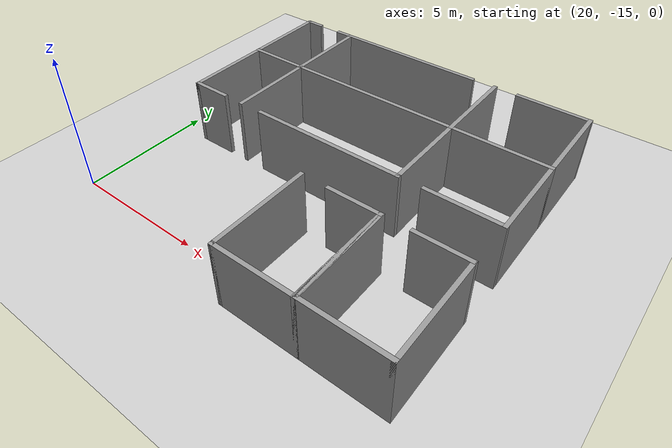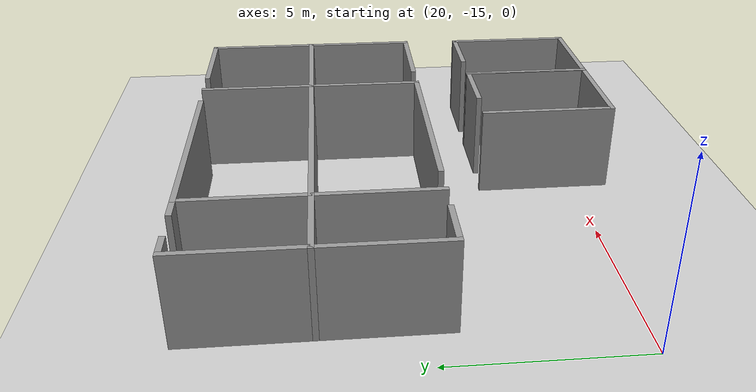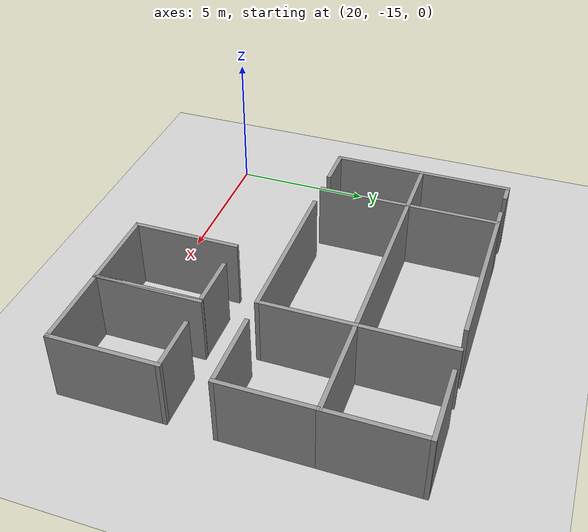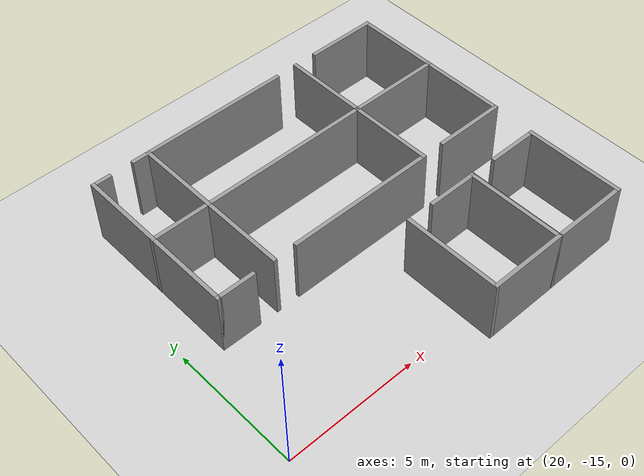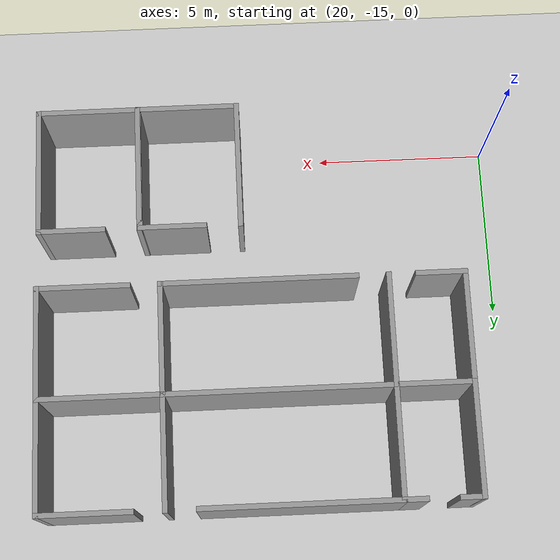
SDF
<sdf version="1.6">
 <world name="default">
  <model name="ground_plane">
   <static>1</static>
   <link name="link">
    <collision name="collision">
     <geometry><plane><normal>0 0 1</normal><size>100 100</size></plane></geometry>
     <surface><friction><ode><mu>100</mu><mu2>50</mu2></ode></friction></surface>
    </collision>
    <visual name="visual">
     <cast_shadows>0</cast_shadows>
     <geometry><plane><normal>0 0 1</normal><size>100 100</size></plane></geometry>
     <material>
      <script><uri>file://media/materials/scripts/gazebo.material</uri><name>Gazebo/Grey</name></script>
     </material>
    </visual>
   </link>
  </model>
  <model name="438">
   <pose>27.2934 -7.40751 0 0 -0 0</pose>
   <link name="Wall_105">
    <collision name="Wall_105_Collision">
     <geometry><box><size>6.668 0.15 2.5</size></box></geometry>
     <pose>0 0 1.25 0 -0 0</pose>
    </collision>
    <visual name="Wall_105_Visual">
     <pose>0 0 1.25 0 -0 0</pose>
     <geometry><box><size>6.668 0.15 2.5</size></box></geometry>
     <material>
      <script><uri>file://media/materials/scripts/gazebo.material</uri><name>Gazebo/Grey</name></script>
      <ambient>1 1 1 1</ambient>
     </material>
     <meta><layer>0</layer></meta>
    </visual>
    <pose>-0.6665 0 0 0 -0 0</pose>
   </link>
   <link name="Wall_106">
    <collision name="Wall_106_Collision">
     <geometry><box><size>3.338 0.15 2.5</size></box></geometry>
     <pose>0 0 1.25 0 -0 0</pose>
    </collision>
    <visual name="Wall_106_Visual">
     <pose>0 0 1.25 0 -0 0</pose>
     <geometry><box><size>3.338 0.15 2.5</size></box></geometry>
     <material>
      <script><uri>file://media/materials/scripts/gazebo.material</uri><name>Gazebo/Grey</name></script>
      <ambient>1 1 1 1</ambient>
     </material>
     <meta><layer>0</layer></meta>
    </visual>
    <pose>2.5925 -1.594 0 0 -0 -1.5708</pose>
   </link>
   <link name="Wall_108">
    <collision name="Wall_108_Collision">
     <geometry><box><size>3.338 0.15 2.5</size></box></geometry>
     <pose>0 0 1.25 0 -0 0</pose>
    </collision>
    <visual name="Wall_108_Visual">
     <pose>0 0 1.25 0 -0 0</pose>
     <geometry><box><size>3.338 0.15 2.5</size></box></geometry>
     <material>
      <script><uri>file://media/materials/scripts/gazebo.material</uri><name>Gazebo/Grey</name></script>
      <ambient>1 1 1 1</ambient>
     </material>
     <meta><layer>0</layer></meta>
    </visual>
    <pose>-3.9255 -1.594 0 0 -0 1.5708</pose>
   </link>
   <link name="Wall_110">
    <collision name="Wall_110_Collision">
     <geometry><box><size>3.667 0.15 2.5</size></box></geometry>
     <pose>0 0 1.25 0 -0 0</pose>
    </collision>
    <visual name="Wall_110_Visual">
     <pose>0 0 1.25 0 -0 0</pose>
     <geometry><box><size>3.667 0.15 2.5</size></box></geometry>
     <material>
      <script><uri>file://media/materials/scripts/gazebo.material</uri><name>Gazebo/Grey</name></script>
      <ambient>1 1 1 1</ambient>
     </material>
     <meta><layer>0</layer></meta>
    </visual>
    <pose>4.351 0 0 0 -0 0</pose>
   </link>
   <link name="Wall_111">
    <collision name="Wall_111_Collision">
     <geometry><box><size>3.338 0.15 2.5</size></box></geometry>
     <pose>0 0 1.25 0 -0 0</pose>
    </collision>
    <visual name="Wall_111_Visual">
     <pose>0 0 1.25 0 -0 0</pose>
     <geometry><box><size>3.338 0.15 2.5</size></box></geometry>
     <material>
      <script><uri>file://media/materials/scripts/gazebo.material</uri><name>Gazebo/Grey</name></script>
      <ambient>1 1 1 1</ambient>
     </material>
     <meta><layer>0</layer></meta>
    </visual>
    <pose>6.1095 1.594 0 0 -0 1.5708</pose>
   </link>
   <link name="Wall_113">
    <collision name="Wall_113_Collision">
     <geometry><box><size>3.338 0.15 2.5</size></box></geometry>
     <pose>0 0 1.25 0 -0 0</pose>
    </collision>
    <visual name="Wall_113_Visual">
     <pose>0 0 1.25 0 -0 0</pose>
     <geometry><box><size>3.338 0.15 2.5</size></box></geometry>
     <material>
      <script><uri>file://media/materials/scripts/gazebo.material</uri><name>Gazebo/Grey</name></script>
      <ambient>1 1 1 1</ambient>
     </material>
     <meta><layer>0</layer></meta>
    </visual>
    <pose>2.5925 1.594 0 0 -0 -1.5708</pose>
   </link>
   <link name="Wall_115">
    <collision name="Wall_115_Collision">
     <geometry><box><size>3.338 0.15 2.5</size></box></geometry>
     <pose>0 0 1.25 0 -0 0</pose>
    </collision>
    <visual name="Wall_115_Visual">
     <pose>0 0 1.25 0 -0 0</pose>
     <geometry><box><size>3.338 0.15 2.5</size></box></geometry>
     <material>
      <script><uri>file://media/materials/scripts/gazebo.material</uri><name>Gazebo/Grey</name></script>
      <ambient>1 1 1 1</ambient>
     </material>
     <meta><layer>0</layer></meta>
    </visual>
    <pose>6.1095 -1.594 0 0 -0 -1.5708</pose>
   </link>
   <link name="Wall_118">
    <collision name="Wall_118_Collision">
     <geometry><box><size>2.75 0.15 2.5</size></box></geometry>
     <pose>0 0 1.25 0 -0 0</pose>
    </collision>
    <visual name="Wall_118_Visual">
     <pose>0 0 1.25 0 -0 0</pose>
     <geometry><box><size>2.75 0.15 2.5</size></box></geometry>
     <material>
      <script><uri>file://media/materials/scripts/gazebo.material</uri><name>Gazebo/Grey</name></script>
      <ambient>1 1 1 1</ambient>
     </material>
     <meta><layer>0</layer></meta>
    </visual>
    <pose>4.8095 3.188 0 0 -0 3.14159</pose>
   </link>
   <link name="Wall_120">
    <collision name="Wall_120_Collision">
     <geometry><box><size>2.75 0.15 2.5</size></box></geometry>
     <pose>0 0 1.25 0 -0 0</pose>
    </collision>
    <visual name="Wall_120_Visual">
     <pose>0 0 1.25 0 -0 0</pose>
     <geometry><box><size>2.75 0.15 2.5</size></box></geometry>
     <material>
      <script><uri>file://media/materials/scripts/gazebo.material</uri><name>Gazebo/Grey</name></script>
      <ambient>1 1 1 1</ambient>
     </material>
     <meta><layer>0</layer></meta>
    </visual>
    <pose>4.8095 -3.188 0 0 -0 3.14159</pose>
   </link>
   <link name="Wall_122">
    <collision name="Wall_122_Collision">
     <geometry><box><size>5.75 0.15 2.5</size></box></geometry>
     <pose>0 0 1.25 0 -0 0</pose>
    </collision>
    <visual name="Wall_122_Visual">
     <pose>0 0 1.25 0 -0 0</pose>
     <geometry><box><size>5.75 0.15 2.5</size></box></geometry>
     <material>
      <script><uri>file://media/materials/scripts/gazebo.material</uri><name>Gazebo/Grey</name></script>
      <ambient>1 1 1 1</ambient>
     </material>
     <meta><layer>0</layer></meta>
    </visual>
    <pose>-0.2075 -3.188 0 0 -0 3.14159</pose>
   </link>
   <link name="Wall_124">
    <collision name="Wall_124_Collision">
     <geometry><box><size>2.334 0.15 2.5</size></box></geometry>
     <pose>0 0 1.25 0 -0 0</pose>
    </collision>
    <visual name="Wall_124_Visual">
     <pose>0 0 1.25 0 -0 0</pose>
     <geometry><box><size>2.334 0.15 2.5</size></box></geometry>
     <material>
      <script><uri>file://media/materials/scripts/gazebo.material</uri><name>Gazebo/Grey</name></script>
      <ambient>1 1 1 1</ambient>
     </material>
     <meta><layer>0</layer></meta>
    </visual>
    <pose>-5.0175 0 0 0 -0 3.14159</pose>
   </link>
   <link name="Wall_125">
    <collision name="Wall_125_Collision">
     <geometry><box><size>3.338 0.15 2.5</size></box></geometry>
     <pose>0 0 1.25 0 -0 0</pose>
    </collision>
    <visual name="Wall_125_Visual">
     <pose>0 0 1.25 0 -0 0</pose>
     <geometry><box><size>3.338 0.15 2.5</size></box></geometry>
     <material>
      <script><uri>file://media/materials/scripts/gazebo.material</uri><name>Gazebo/Grey</name></script>
      <ambient>1 1 1 1</ambient>
     </material>
     <meta><layer>0</layer></meta>
    </visual>
    <pose>-6.1095 1.594 0 0 -0 1.5708</pose>
   </link>
   <link name="Wall_127">
    <collision name="Wall_127_Collision">
     <geometry><box><size>3.338 0.15 2.5</size></box></geometry>
     <pose>0 0 1.25 0 -0 0</pose>
    </collision>
    <visual name="Wall_127_Visual">
     <pose>0 0 1.25 0 -0 0</pose>
     <geometry><box><size>3.338 0.15 2.5</size></box></geometry>
     <material>
      <script><uri>file://media/materials/scripts/gazebo.material</uri><name>Gazebo/Grey</name></script>
      <ambient>1 1 1 1</ambient>
     </material>
     <meta><layer>0</layer></meta>
    </visual>
    <pose>-3.9255 1.594 0 0 -0 -1.5708</pose>
   </link>
   <link name="Wall_129">
    <collision name="Wall_129_Collision">
     <geometry><box><size>3.338 0.15 2.5</size></box></geometry>
     <pose>0 0 1.25 0 -0 0</pose>
    </collision>
    <visual name="Wall_129_Visual">
     <pose>0 0 1.25 0 -0 0</pose>
     <geometry><box><size>3.338 0.15 2.5</size></box></geometry>
     <material>
      <script><uri>file://media/materials/scripts/gazebo.material</uri><name>Gazebo/Grey</name></script>
      <ambient>1 1 1 1</ambient>
     </material>
     <meta><layer>0</layer></meta>
    </visual>
    <pose>-6.1095 -1.594 0 0 -0 -1.5708</pose>
   </link>
   <link name="Wall_132">
    <collision name="Wall_132_Collision">
     <geometry><box><size>1.5 0.15 2.5</size></box></geometry>
     <pose>0 0 1.25 0 -0 0</pose>
    </collision>
    <visual name="Wall_132_Visual">
     <pose>0 0 1.25 0 -0 0</pose>
     <geometry><box><size>1.5 0.15 2.5</size></box></geometry>
     <material>
      <script><uri>file://media/materials/scripts/gazebo.material</uri><name>Gazebo/Grey</name></script>
      <ambient>1 1 1 1</ambient>
     </material>
     <meta><layer>0</layer></meta>
    </visual>
    <pose>-5.4345 -3.188 0 0 -0 0</pose>
   </link>
   <link name="Wall_134">
    <collision name="Wall_134_Collision">
     <geometry><box><size>0.75 0.15 2.5</size></box></geometry>
     <pose>0 0 1.25 0 -0 0</pose>
    </collision>
    <visual name="Wall_134_Visual">
     <pose>0 0 1.25 0 -0 0</pose>
     <geometry><box><size>0.75 0.15 2.5</size></box></geometry>
     <material>
      <script><uri>file://media/materials/scripts/gazebo.material</uri><name>Gazebo/Grey</name></script>
      <ambient>1 1 1 1</ambient>
     </material>
     <meta><layer>0</layer></meta>
    </visual>
    <pose>-5.8095 3.188 0 0 -0 0</pose>
   </link>
   <link name="Wall_136">
    <collision name="Wall_136_Collision">
     <geometry><box><size>0.75 0.15 2.5</size></box></geometry>
     <pose>0 0 1.25 0 -0 0</pose>
    </collision>
    <visual name="Wall_136_Visual">
     <pose>0 0 1.25 0 -0 0</pose>
     <geometry><box><size>0.75 0.15 2.5</size></box></geometry>
     <material>
      <script><uri>file://media/materials/scripts/gazebo.material</uri><name>Gazebo/Grey</name></script>
      <ambient>1 1 1 1</ambient>
     </material>
     <meta><layer>0</layer></meta>
    </visual>
    <pose>-4.2255 3.188 0 0 -0 0</pose>
   </link>
   <link name="Wall_138">
    <collision name="Wall_138_Collision">
     <geometry><box><size>5.75 0.15 2.5</size></box></geometry>
     <pose>0 0 1.25 0 -0 0</pose>
    </collision>
    <visual name="Wall_138_Visual">
     <pose>0 0 1.25 0 -0 0</pose>
     <geometry><box><size>5.75 0.15 2.5</size></box></geometry>
     <material>
      <script><uri>file://media/materials/scripts/gazebo.material</uri><name>Gazebo/Grey</name></script>
      <ambient>1 1 1 1</ambient>
     </material>
     <meta><layer>0</layer></meta>
    </visual>
    <pose>-1.1255 3.188 0 0 -0 0</pose>
   </link>
   <static>1</static>
  </model>
  <model name="329">
   <pose>31.8929 -14.1181 0 0 -0 0</pose>
   <link name="Wall_0">
    <collision name="Wall_0_Collision">
     <geometry><box><size>3.81 0.15 2.5</size></box></geometry>
     <pose>0 0 1.25 0 -0 0</pose>
    </collision>
    <visual name="Wall_0_Visual">
     <pose>0 0 1.25 0 -0 0</pose>
     <geometry><box><size>3.81 0.15 2.5</size></box></geometry>
     <material>
      <script><uri>file://media/materials/scripts/gazebo.material</uri><name>Gazebo/Grey</name></script>
      <ambient>1 1 1 1</ambient>
     </material>
     <meta><layer>0</layer></meta>
    </visual>
    <pose>-1.449 0 0 0 -0 -1.5708</pose>
   </link>
   <link name="Wall_1">
    <collision name="Wall_1_Collision">
     <geometry><box><size>3.048 0.15 2.5</size></box></geometry>
     <pose>0 0 1.25 0 -0 0</pose>
    </collision>
    <visual name="Wall_1_Visual">
     <pose>0 0 1.25 0 -0 0</pose>
     <geometry><box><size>3.048 0.15 2.5</size></box></geometry>
     <material>
      <script><uri>file://media/materials/scripts/gazebo.material</uri><name>Gazebo/Grey</name></script>
      <ambient>1 1 1 1</ambient>
     </material>
     <meta><layer>0</layer></meta>
    </visual>
    <pose>-0 -1.83 0 0 -0 0</pose>
   </link>
   <link name="Wall_2">
    <collision name="Wall_2_Collision">
     <geometry><box><size>3.81 0.15 2.5</size></box></geometry>
     <pose>0 0 1.25 0 -0 0</pose>
    </collision>
    <visual name="Wall_2_Visual">
     <pose>0 0 1.25 0 -0 0</pose>
     <geometry><box><size>3.81 0.15 2.5</size></box></geometry>
     <material>
      <script><uri>file://media/materials/scripts/gazebo.material</uri><name>Gazebo/Grey</name></script>
      <ambient>1 1 1 1</ambient>
     </material>
     <meta><layer>0</layer></meta>
    </visual>
    <pose>1.449 0 0 0 -0 1.5708</pose>
   </link>
   <link name="Wall_5">
    <collision name="Wall_5_Collision">
     <geometry><box><size>2 0.15 2.5</size></box></geometry>
     <pose>0 0 1.25 0 -0 0</pose>
    </collision>
    <visual name="Wall_5_Visual">
     <pose>0 0 1.25 0 -0 0</pose>
     <geometry><box><size>2 0.15 2.5</size></box></geometry>
     <material>
      <script><uri>file://media/materials/scripts/gazebo.material</uri><name>Gazebo/Grey</name></script>
      <ambient>1 1 1 1</ambient>
     </material>
     <meta><layer>0</layer></meta>
    </visual>
    <pose>0.524 1.83 0 0 -0 3.14159</pose>
   </link>
   <static>1</static>
  </model>
  <model name="329_0">
   <pose>28.9727 -14.122 0 0 -0 0</pose>
   <link name="Wall_0">
    <collision name="Wall_0_Collision">
     <geometry><box><size>3.81 0.15 2.5</size></box></geometry>
     <pose>0 0 1.25 0 -0 0</pose>
    </collision>
    <visual name="Wall_0_Visual">
     <pose>0 0 1.25 0 -0 0</pose>
     <geometry><box><size>3.81 0.15 2.5</size></box></geometry>
     <material>
      <script><uri>file://media/materials/scripts/gazebo.material</uri><name>Gazebo/Grey</name></script>
      <ambient>1 1 1 1</ambient>
     </material>
     <meta><layer>0</layer></meta>
    </visual>
    <pose>-1.449 0 0 0 -0 -1.5708</pose>
   </link>
   <link name="Wall_1">
    <collision name="Wall_1_Collision">
     <geometry><box><size>3.048 0.15 2.5</size></box></geometry>
     <pose>0 0 1.25 0 -0 0</pose>
    </collision>
    <visual name="Wall_1_Visual">
     <pose>0 0 1.25 0 -0 0</pose>
     <geometry><box><size>3.048 0.15 2.5</size></box></geometry>
     <material>
      <script><uri>file://media/materials/scripts/gazebo.material</uri><name>Gazebo/Grey</name></script>
      <ambient>1 1 1 1</ambient>
     </material>
     <meta><layer>0</layer></meta>
    </visual>
    <pose>-0 -1.83 0 0 -0 0</pose>
   </link>
   <link name="Wall_2">
    <collision name="Wall_2_Collision">
     <geometry><box><size>3.81 0.15 2.5</size></box></geometry>
     <pose>0 0 1.25 0 -0 0</pose>
    </collision>
    <visual name="Wall_2_Visual">
     <pose>0 0 1.25 0 -0 0</pose>
     <geometry><box><size>3.81 0.15 2.5</size></box></geometry>
     <material>
      <script><uri>file://media/materials/scripts/gazebo.material</uri><name>Gazebo/Grey</name></script>
      <ambient>1 1 1 1</ambient>
     </material>
     <meta><layer>0</layer></meta>
    </visual>
    <pose>1.449 0 0 0 -0 1.5708</pose>
   </link>
   <link name="Wall_5">
    <collision name="Wall_5_Collision">
     <geometry><box><size>2 0.15 2.5</size></box></geometry>
     <pose>0 0 1.25 0 -0 0</pose>
    </collision>
    <visual name="Wall_5_Visual">
     <pose>0 0 1.25 0 -0 0</pose>
     <geometry><box><size>2 0.15 2.5</size></box></geometry>
     <material>
      <script><uri>file://media/materials/scripts/gazebo.material</uri><name>Gazebo/Grey</name></script>
      <ambient>1 1 1 1</ambient>
     </material>
     <meta><layer>0</layer></meta>
    </visual>
    <pose>0.524 1.83 0 0 -0 3.14159</pose>
   </link>
   <static>1</static>
  </model>
 </world>
</sdf>
